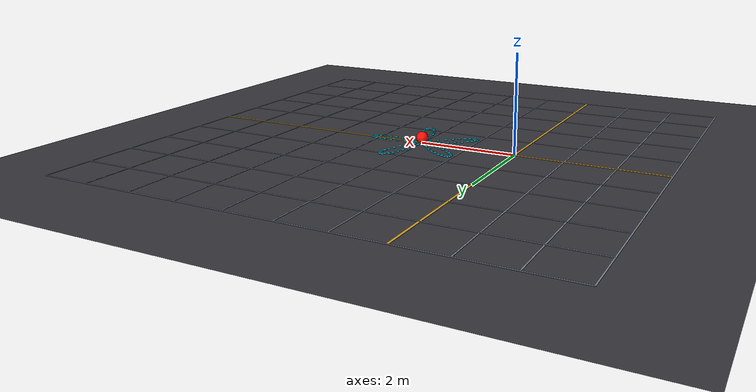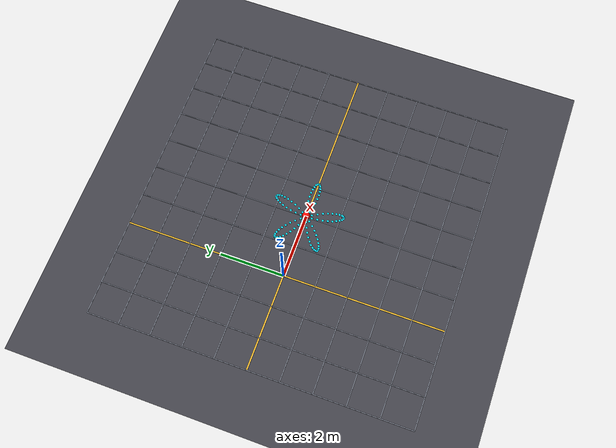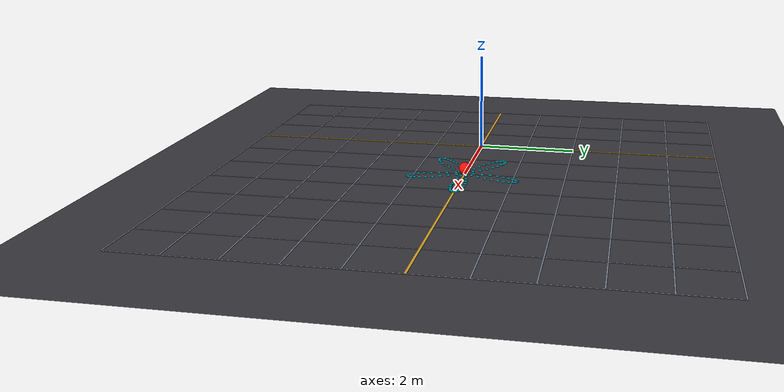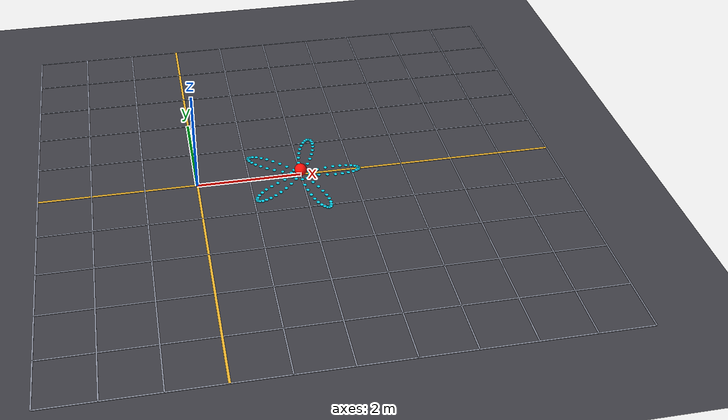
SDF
<?xml version="1.0"?>
<sdf version="1.9">
  <world name="ball_arena">
    <gravity>0 0 -9.81</gravity>
    <physics name="1ms" type="gz">
      <max_step_size>0.001</max_step_size>
      <real_time_factor>1</real_time_factor>
    </physics>
    <plugin
      filename="gz-sim-physics-system"
      name="gz::sim::systems::Physics"/>
    <plugin
      filename="gz-sim-user-commands-system"
      name="gz::sim::systems::UserCommands"/>
    <plugin
      filename="gz-sim-scene-broadcaster-system"
      name="gz::sim::systems::SceneBroadcaster"/>
    <plugin
      filename="gz-sim-sensors-system"
      name="gz::sim::systems::Sensors">
      <render_engine>ogre2</render_engine>
    </plugin>

    <light type="directional" name="sun">
      <pose>0 0 10 0 0 0</pose>
      <direction>-0.3 0.2 -1</direction>
    </light>

    <model name="ground">
      <static>true</static>
      <link name="link">
        <collision name="collision">
          <geometry>
            <plane>
              <normal>0 0 1</normal>
              <size>20 20</size>
            </plane>
          </geometry>
        </collision>
        <visual name="visual">
          <geometry>
            <plane>
              <normal>0 0 1</normal>
              <size>20 20</size>
            </plane>
          </geometry>
          <material>
            <diffuse>0.25 0.25 0.28 1</diffuse>
          </material>
        </visual>
      </link>
    </model>
    <!-- One-metre square guides make translation and rotation easy to judge. -->
    <model name="floor_grid">
      <static>true</static>
      <link name="grid_link">
        <visual name="grid_x_m3"><pose>-3 0 0.006 0 0 0</pose><geometry><box><size>0.025 10 0.008</size></box></geometry><material><ambient>0.58 0.60 0.66 1</ambient><diffuse>0.58 0.60 0.66 1</diffuse></material><cast_shadows>false</cast_shadows></visual>
        <visual name="grid_x_m2"><pose>-2 0 0.006 0 0 0</pose><geometry><box><size>0.025 10 0.008</size></box></geometry><material><ambient>0.58 0.60 0.66 1</ambient><diffuse>0.58 0.60 0.66 1</diffuse></material><cast_shadows>false</cast_shadows></visual>
        <visual name="grid_x_m1"><pose>-1 0 0.006 0 0 0</pose><geometry><box><size>0.025 10 0.008</size></box></geometry><material><ambient>0.58 0.60 0.66 1</ambient><diffuse>0.58 0.60 0.66 1</diffuse></material><cast_shadows>false</cast_shadows></visual>
        <visual name="grid_x_0"><pose>0 0 0.006 0 0 0</pose><geometry><box><size>0.045 10 0.008</size></box></geometry><material><ambient>0.95 0.72 0.18 1</ambient><diffuse>0.95 0.72 0.18 1</diffuse></material><cast_shadows>false</cast_shadows></visual>
        <visual name="grid_x_1"><pose>1 0 0.006 0 0 0</pose><geometry><box><size>0.025 10 0.008</size></box></geometry><material><ambient>0.58 0.60 0.66 1</ambient><diffuse>0.58 0.60 0.66 1</diffuse></material><cast_shadows>false</cast_shadows></visual>
        <visual name="grid_x_2"><pose>2 0 0.006 0 0 0</pose><geometry><box><size>0.025 10 0.008</size></box></geometry><material><ambient>0.58 0.60 0.66 1</ambient><diffuse>0.58 0.60 0.66 1</diffuse></material><cast_shadows>false</cast_shadows></visual>
        <visual name="grid_x_3"><pose>3 0 0.006 0 0 0</pose><geometry><box><size>0.025 10 0.008</size></box></geometry><material><ambient>0.58 0.60 0.66 1</ambient><diffuse>0.58 0.60 0.66 1</diffuse></material><cast_shadows>false</cast_shadows></visual>
        <visual name="grid_x_4"><pose>4 0 0.006 0 0 0</pose><geometry><box><size>0.025 10 0.008</size></box></geometry><material><ambient>0.58 0.60 0.66 1</ambient><diffuse>0.58 0.60 0.66 1</diffuse></material><cast_shadows>false</cast_shadows></visual>
        <visual name="grid_x_5"><pose>5 0 0.006 0 0 0</pose><geometry><box><size>0.025 10 0.008</size></box></geometry><material><ambient>0.58 0.60 0.66 1</ambient><diffuse>0.58 0.60 0.66 1</diffuse></material><cast_shadows>false</cast_shadows></visual>
        <visual name="grid_x_6"><pose>6 0 0.006 0 0 0</pose><geometry><box><size>0.025 10 0.008</size></box></geometry><material><ambient>0.58 0.60 0.66 1</ambient><diffuse>0.58 0.60 0.66 1</diffuse></material><cast_shadows>false</cast_shadows></visual>
        <visual name="grid_x_7"><pose>7 0 0.006 0 0 0</pose><geometry><box><size>0.025 10 0.008</size></box></geometry><material><ambient>0.58 0.60 0.66 1</ambient><diffuse>0.58 0.60 0.66 1</diffuse></material><cast_shadows>false</cast_shadows></visual>
        <visual name="grid_y_m5"><pose>2 -5 0.006 0 0 0</pose><geometry><box><size>10 0.025 0.008</size></box></geometry><material><ambient>0.58 0.60 0.66 1</ambient><diffuse>0.58 0.60 0.66 1</diffuse></material><cast_shadows>false</cast_shadows></visual>
        <visual name="grid_y_m4"><pose>2 -4 0.006 0 0 0</pose><geometry><box><size>10 0.025 0.008</size></box></geometry><material><ambient>0.58 0.60 0.66 1</ambient><diffuse>0.58 0.60 0.66 1</diffuse></material><cast_shadows>false</cast_shadows></visual>
        <visual name="grid_y_m3"><pose>2 -3 0.006 0 0 0</pose><geometry><box><size>10 0.025 0.008</size></box></geometry><material><ambient>0.58 0.60 0.66 1</ambient><diffuse>0.58 0.60 0.66 1</diffuse></material><cast_shadows>false</cast_shadows></visual>
        <visual name="grid_y_m2"><pose>2 -2 0.006 0 0 0</pose><geometry><box><size>10 0.025 0.008</size></box></geometry><material><ambient>0.58 0.60 0.66 1</ambient><diffuse>0.58 0.60 0.66 1</diffuse></material><cast_shadows>false</cast_shadows></visual>
        <visual name="grid_y_m1"><pose>2 -1 0.006 0 0 0</pose><geometry><box><size>10 0.025 0.008</size></box></geometry><material><ambient>0.58 0.60 0.66 1</ambient><diffuse>0.58 0.60 0.66 1</diffuse></material><cast_shadows>false</cast_shadows></visual>
        <visual name="grid_y_0"><pose>2 0 0.006 0 0 0</pose><geometry><box><size>10 0.045 0.008</size></box></geometry><material><ambient>0.95 0.72 0.18 1</ambient><diffuse>0.95 0.72 0.18 1</diffuse></material><cast_shadows>false</cast_shadows></visual>
        <visual name="grid_y_1"><pose>2 1 0.006 0 0 0</pose><geometry><box><size>10 0.025 0.008</size></box></geometry><material><ambient>0.58 0.60 0.66 1</ambient><diffuse>0.58 0.60 0.66 1</diffuse></material><cast_shadows>false</cast_shadows></visual>
        <visual name="grid_y_2"><pose>2 2 0.006 0 0 0</pose><geometry><box><size>10 0.025 0.008</size></box></geometry><material><ambient>0.58 0.60 0.66 1</ambient><diffuse>0.58 0.60 0.66 1</diffuse></material><cast_shadows>false</cast_shadows></visual>
        <visual name="grid_y_3"><pose>2 3 0.006 0 0 0</pose><geometry><box><size>10 0.025 0.008</size></box></geometry><material><ambient>0.58 0.60 0.66 1</ambient><diffuse>0.58 0.60 0.66 1</diffuse></material><cast_shadows>false</cast_shadows></visual>
        <visual name="grid_y_4"><pose>2 4 0.006 0 0 0</pose><geometry><box><size>10 0.025 0.008</size></box></geometry><material><ambient>0.58 0.60 0.66 1</ambient><diffuse>0.58 0.60 0.66 1</diffuse></material><cast_shadows>false</cast_shadows></visual>
        <visual name="grid_y_5"><pose>2 5 0.006 0 0 0</pose><geometry><box><size>10 0.025 0.008</size></box></geometry><material><ambient>0.58 0.60 0.66 1</ambient><diffuse>0.58 0.60 0.66 1</diffuse></material><cast_shadows>false</cast_shadows></visual>
      </link>
    </model>

    <!-- Dotted guide matching the default five-lobe trajectory. -->
    <model name="five_lobe_dotted_path">
      <static>true</static>
      <link name="path_link">
        <visual name="path_dot_000"><pose>3.1500 0.0000 0.014 0 0 0</pose><geometry><cylinder><radius>0.035</radius><length>0.012</length></cylinder></geometry><material><ambient>0.05 0.85 0.95 1</ambient><diffuse>0.05 0.85 0.95 1</diffuse><emissive>0.01 0.18 0.22 1</emissive></material><cast_shadows>false</cast_shadows></visual>
        <visual name="path_dot_001"><pose>3.1353 0.0357 0.014 0 0 0</pose><geometry><cylinder><radius>0.035</radius><length>0.012</length></cylinder></geometry><material><ambient>0.05 0.85 0.95 1</ambient><diffuse>0.05 0.85 0.95 1</diffuse><emissive>0.01 0.18 0.22 1</emissive></material><cast_shadows>false</cast_shadows></visual>
        <visual name="path_dot_002"><pose>3.0916 0.0687 0.014 0 0 0</pose><geometry><cylinder><radius>0.035</radius><length>0.012</length></cylinder></geometry><material><ambient>0.05 0.85 0.95 1</ambient><diffuse>0.05 0.85 0.95 1</diffuse><emissive>0.01 0.18 0.22 1</emissive></material><cast_shadows>false</cast_shadows></visual>
        <visual name="path_dot_003"><pose>3.0201 0.0964 0.014 0 0 0</pose><geometry><cylinder><radius>0.035</radius><length>0.012</length></cylinder></geometry><material><ambient>0.05 0.85 0.95 1</ambient><diffuse>0.05 0.85 0.95 1</diffuse><emissive>0.01 0.18 0.22 1</emissive></material><cast_shadows>false</cast_shadows></visual>
        <visual name="path_dot_004"><pose>2.9230 0.1166 0.014 0 0 0</pose><geometry><cylinder><radius>0.035</radius><length>0.012</length></cylinder></geometry><material><ambient>0.05 0.85 0.95 1</ambient><diffuse>0.05 0.85 0.95 1</diffuse><emissive>0.01 0.18 0.22 1</emissive></material><cast_shadows>false</cast_shadows></visual>
        <visual name="path_dot_005"><pose>2.8032 0.1272 0.014 0 0 0</pose><geometry><cylinder><radius>0.035</radius><length>0.012</length></cylinder></geometry><material><ambient>0.05 0.85 0.95 1</ambient><diffuse>0.05 0.85 0.95 1</diffuse><emissive>0.01 0.18 0.22 1</emissive></material><cast_shadows>false</cast_shadows></visual>
        <visual name="path_dot_006"><pose>2.6640 0.1267 0.014 0 0 0</pose><geometry><cylinder><radius>0.035</radius><length>0.012</length></cylinder></geometry><material><ambient>0.05 0.85 0.95 1</ambient><diffuse>0.05 0.85 0.95 1</diffuse><emissive>0.01 0.18 0.22 1</emissive></material><cast_shadows>false</cast_shadows></visual>
        <visual name="path_dot_007"><pose>2.5095 0.1139 0.014 0 0 0</pose><geometry><cylinder><radius>0.035</radius><length>0.012</length></cylinder></geometry><material><ambient>0.05 0.85 0.95 1</ambient><diffuse>0.05 0.85 0.95 1</diffuse><emissive>0.01 0.18 0.22 1</emissive></material><cast_shadows>false</cast_shadows></visual>
        <visual name="path_dot_008"><pose>2.3442 0.0884 0.014 0 0 0</pose><geometry><cylinder><radius>0.035</radius><length>0.012</length></cylinder></geometry><material><ambient>0.05 0.85 0.95 1</ambient><diffuse>0.05 0.85 0.95 1</diffuse><emissive>0.01 0.18 0.22 1</emissive></material><cast_shadows>false</cast_shadows></visual>
        <visual name="path_dot_009"><pose>2.1728 0.0502 0.014 0 0 0</pose><geometry><cylinder><radius>0.035</radius><length>0.012</length></cylinder></geometry><material><ambient>0.05 0.85 0.95 1</ambient><diffuse>0.05 0.85 0.95 1</diffuse><emissive>0.01 0.18 0.22 1</emissive></material><cast_shadows>false</cast_shadows></visual>
        <visual name="path_dot_010"><pose>2.0000 0.0000 0.014 0 0 0</pose><geometry><cylinder><radius>0.035</radius><length>0.012</length></cylinder></geometry><material><ambient>0.05 0.85 0.95 1</ambient><diffuse>0.05 0.85 0.95 1</diffuse><emissive>0.01 0.18 0.22 1</emissive></material><cast_shadows>false</cast_shadows></visual>
        <visual name="path_dot_011"><pose>1.8307 -0.0609 0.014 0 0 0</pose><geometry><cylinder><radius>0.035</radius><length>0.012</length></cylinder></geometry><material><ambient>0.05 0.85 0.95 1</ambient><diffuse>0.05 0.85 0.95 1</diffuse><emissive>0.01 0.18 0.22 1</emissive></material><cast_shadows>false</cast_shadows></visual>
        <visual name="path_dot_012"><pose>1.6696 -0.1308 0.014 0 0 0</pose><geometry><cylinder><radius>0.035</radius><length>0.012</length></cylinder></geometry><material><ambient>0.05 0.85 0.95 1</ambient><diffuse>0.05 0.85 0.95 1</diffuse><emissive>0.01 0.18 0.22 1</emissive></material><cast_shadows>false</cast_shadows></visual>
        <visual name="path_dot_013"><pose>1.5209 -0.2073 0.014 0 0 0</pose><geometry><cylinder><radius>0.035</radius><length>0.012</length></cylinder></geometry><material><ambient>0.05 0.85 0.95 1</ambient><diffuse>0.05 0.85 0.95 1</diffuse><emissive>0.01 0.18 0.22 1</emissive></material><cast_shadows>false</cast_shadows></visual>
        <visual name="path_dot_014"><pose>1.3884 -0.2878 0.014 0 0 0</pose><geometry><cylinder><radius>0.035</radius><length>0.012</length></cylinder></geometry><material><ambient>0.05 0.85 0.95 1</ambient><diffuse>0.05 0.85 0.95 1</diffuse><emissive>0.01 0.18 0.22 1</emissive></material><cast_shadows>false</cast_shadows></visual>
        <visual name="path_dot_015"><pose>1.2755 -0.3692 0.014 0 0 0</pose><geometry><cylinder><radius>0.035</radius><length>0.012</length></cylinder></geometry><material><ambient>0.05 0.85 0.95 1</ambient><diffuse>0.05 0.85 0.95 1</diffuse><emissive>0.01 0.18 0.22 1</emissive></material><cast_shadows>false</cast_shadows></visual>
        <visual name="path_dot_016"><pose>1.1847 -0.4482 0.014 0 0 0</pose><geometry><cylinder><radius>0.035</radius><length>0.012</length></cylinder></geometry><material><ambient>0.05 0.85 0.95 1</ambient><diffuse>0.05 0.85 0.95 1</diffuse><emissive>0.01 0.18 0.22 1</emissive></material><cast_shadows>false</cast_shadows></visual>
        <visual name="path_dot_017"><pose>1.1180 -0.5216 0.014 0 0 0</pose><geometry><cylinder><radius>0.035</radius><length>0.012</length></cylinder></geometry><material><ambient>0.05 0.85 0.95 1</ambient><diffuse>0.05 0.85 0.95 1</diffuse><emissive>0.01 0.18 0.22 1</emissive></material><cast_shadows>false</cast_shadows></visual>
        <visual name="path_dot_018"><pose>1.0765 -0.5860 0.014 0 0 0</pose><geometry><cylinder><radius>0.035</radius><length>0.012</length></cylinder></geometry><material><ambient>0.05 0.85 0.95 1</ambient><diffuse>0.05 0.85 0.95 1</diffuse><emissive>0.01 0.18 0.22 1</emissive></material><cast_shadows>false</cast_shadows></visual>
        <visual name="path_dot_019"><pose>1.0606 -0.6384 0.014 0 0 0</pose><geometry><cylinder><radius>0.035</radius><length>0.012</length></cylinder></geometry><material><ambient>0.05 0.85 0.95 1</ambient><diffuse>0.05 0.85 0.95 1</diffuse><emissive>0.01 0.18 0.22 1</emissive></material><cast_shadows>false</cast_shadows></visual>
        <visual name="path_dot_020"><pose>1.0696 -0.6760 0.014 0 0 0</pose><geometry><cylinder><radius>0.035</radius><length>0.012</length></cylinder></geometry><material><ambient>0.05 0.85 0.95 1</ambient><diffuse>0.05 0.85 0.95 1</diffuse><emissive>0.01 0.18 0.22 1</emissive></material><cast_shadows>false</cast_shadows></visual>
        <visual name="path_dot_021"><pose>1.1025 -0.6962 0.014 0 0 0</pose><geometry><cylinder><radius>0.035</radius><length>0.012</length></cylinder></geometry><material><ambient>0.05 0.85 0.95 1</ambient><diffuse>0.05 0.85 0.95 1</diffuse><emissive>0.01 0.18 0.22 1</emissive></material><cast_shadows>false</cast_shadows></visual>
        <visual name="path_dot_022"><pose>1.1573 -0.6972 0.014 0 0 0</pose><geometry><cylinder><radius>0.035</radius><length>0.012</length></cylinder></geometry><material><ambient>0.05 0.85 0.95 1</ambient><diffuse>0.05 0.85 0.95 1</diffuse><emissive>0.01 0.18 0.22 1</emissive></material><cast_shadows>false</cast_shadows></visual>
        <visual name="path_dot_023"><pose>1.2314 -0.6776 0.014 0 0 0</pose><geometry><cylinder><radius>0.035</radius><length>0.012</length></cylinder></geometry><material><ambient>0.05 0.85 0.95 1</ambient><diffuse>0.05 0.85 0.95 1</diffuse><emissive>0.01 0.18 0.22 1</emissive></material><cast_shadows>false</cast_shadows></visual>
        <visual name="path_dot_024"><pose>1.3218 -0.6369 0.014 0 0 0</pose><geometry><cylinder><radius>0.035</radius><length>0.012</length></cylinder></geometry><material><ambient>0.05 0.85 0.95 1</ambient><diffuse>0.05 0.85 0.95 1</diffuse><emissive>0.01 0.18 0.22 1</emissive></material><cast_shadows>false</cast_shadows></visual>
        <visual name="path_dot_025"><pose>1.4250 -0.5750 0.014 0 0 0</pose><geometry><cylinder><radius>0.035</radius><length>0.012</length></cylinder></geometry><material><ambient>0.05 0.85 0.95 1</ambient><diffuse>0.05 0.85 0.95 1</diffuse><emissive>0.01 0.18 0.22 1</emissive></material><cast_shadows>false</cast_shadows></visual>
        <visual name="path_dot_026"><pose>1.5373 -0.4927 0.014 0 0 0</pose><geometry><cylinder><radius>0.035</radius><length>0.012</length></cylinder></geometry><material><ambient>0.05 0.85 0.95 1</ambient><diffuse>0.05 0.85 0.95 1</diffuse><emissive>0.01 0.18 0.22 1</emissive></material><cast_shadows>false</cast_shadows></visual>
        <visual name="path_dot_027"><pose>1.6547 -0.3916 0.014 0 0 0</pose><geometry><cylinder><radius>0.035</radius><length>0.012</length></cylinder></geometry><material><ambient>0.05 0.85 0.95 1</ambient><diffuse>0.05 0.85 0.95 1</diffuse><emissive>0.01 0.18 0.22 1</emissive></material><cast_shadows>false</cast_shadows></visual>
        <visual name="path_dot_028"><pose>1.7735 -0.2738 0.014 0 0 0</pose><geometry><cylinder><radius>0.035</radius><length>0.012</length></cylinder></geometry><material><ambient>0.05 0.85 0.95 1</ambient><diffuse>0.05 0.85 0.95 1</diffuse><emissive>0.01 0.18 0.22 1</emissive></material><cast_shadows>false</cast_shadows></visual>
        <visual name="path_dot_029"><pose>1.8897 -0.1421 0.014 0 0 0</pose><geometry><cylinder><radius>0.035</radius><length>0.012</length></cylinder></geometry><material><ambient>0.05 0.85 0.95 1</ambient><diffuse>0.05 0.85 0.95 1</diffuse><emissive>0.01 0.18 0.22 1</emissive></material><cast_shadows>false</cast_shadows></visual>
        <visual name="path_dot_030"><pose>2.0000 -0.0000 0.014 0 0 0</pose><geometry><cylinder><radius>0.035</radius><length>0.012</length></cylinder></geometry><material><ambient>0.05 0.85 0.95 1</ambient><diffuse>0.05 0.85 0.95 1</diffuse><emissive>0.01 0.18 0.22 1</emissive></material><cast_shadows>false</cast_shadows></visual>
        <visual name="path_dot_031"><pose>2.1011 0.1488 0.014 0 0 0</pose><geometry><cylinder><radius>0.035</radius><length>0.012</length></cylinder></geometry><material><ambient>0.05 0.85 0.95 1</ambient><diffuse>0.05 0.85 0.95 1</diffuse><emissive>0.01 0.18 0.22 1</emissive></material><cast_shadows>false</cast_shadows></visual>
        <visual name="path_dot_032"><pose>2.1904 0.3000 0.014 0 0 0</pose><geometry><cylinder><radius>0.035</radius><length>0.012</length></cylinder></geometry><material><ambient>0.05 0.85 0.95 1</ambient><diffuse>0.05 0.85 0.95 1</diffuse><emissive>0.01 0.18 0.22 1</emissive></material><cast_shadows>false</cast_shadows></visual>
        <visual name="path_dot_033"><pose>2.2658 0.4494 0.014 0 0 0</pose><geometry><cylinder><radius>0.035</radius><length>0.012</length></cylinder></geometry><material><ambient>0.05 0.85 0.95 1</ambient><diffuse>0.05 0.85 0.95 1</diffuse><emissive>0.01 0.18 0.22 1</emissive></material><cast_shadows>false</cast_shadows></visual>
        <visual name="path_dot_034"><pose>2.3256 0.5923 0.014 0 0 0</pose><geometry><cylinder><radius>0.035</radius><length>0.012</length></cylinder></geometry><material><ambient>0.05 0.85 0.95 1</ambient><diffuse>0.05 0.85 0.95 1</diffuse><emissive>0.01 0.18 0.22 1</emissive></material><cast_shadows>false</cast_shadows></visual>
        <visual name="path_dot_035"><pose>2.3692 0.7245 0.014 0 0 0</pose><geometry><cylinder><radius>0.035</radius><length>0.012</length></cylinder></geometry><material><ambient>0.05 0.85 0.95 1</ambient><diffuse>0.05 0.85 0.95 1</diffuse><emissive>0.01 0.18 0.22 1</emissive></material><cast_shadows>false</cast_shadows></visual>
        <visual name="path_dot_036"><pose>2.3961 0.8418 0.014 0 0 0</pose><geometry><cylinder><radius>0.035</radius><length>0.012</length></cylinder></geometry><material><ambient>0.05 0.85 0.95 1</ambient><diffuse>0.05 0.85 0.95 1</diffuse><emissive>0.01 0.18 0.22 1</emissive></material><cast_shadows>false</cast_shadows></visual>
        <visual name="path_dot_037"><pose>2.4069 0.9404 0.014 0 0 0</pose><geometry><cylinder><radius>0.035</radius><length>0.012</length></cylinder></geometry><material><ambient>0.05 0.85 0.95 1</ambient><diffuse>0.05 0.85 0.95 1</diffuse><emissive>0.01 0.18 0.22 1</emissive></material><cast_shadows>false</cast_shadows></visual>
        <visual name="path_dot_038"><pose>2.4026 1.0169 0.014 0 0 0</pose><geometry><cylinder><radius>0.035</radius><length>0.012</length></cylinder></geometry><material><ambient>0.05 0.85 0.95 1</ambient><diffuse>0.05 0.85 0.95 1</diffuse><emissive>0.01 0.18 0.22 1</emissive></material><cast_shadows>false</cast_shadows></visual>
        <visual name="path_dot_039"><pose>2.3848 1.0687 0.014 0 0 0</pose><geometry><cylinder><radius>0.035</radius><length>0.012</length></cylinder></geometry><material><ambient>0.05 0.85 0.95 1</ambient><diffuse>0.05 0.85 0.95 1</diffuse><emissive>0.01 0.18 0.22 1</emissive></material><cast_shadows>false</cast_shadows></visual>
        <visual name="path_dot_040"><pose>2.3554 1.0937 0.014 0 0 0</pose><geometry><cylinder><radius>0.035</radius><length>0.012</length></cylinder></geometry><material><ambient>0.05 0.85 0.95 1</ambient><diffuse>0.05 0.85 0.95 1</diffuse><emissive>0.01 0.18 0.22 1</emissive></material><cast_shadows>false</cast_shadows></visual>
        <visual name="path_dot_041"><pose>2.3169 1.0907 0.014 0 0 0</pose><geometry><cylinder><radius>0.035</radius><length>0.012</length></cylinder></geometry><material><ambient>0.05 0.85 0.95 1</ambient><diffuse>0.05 0.85 0.95 1</diffuse><emissive>0.01 0.18 0.22 1</emissive></material><cast_shadows>false</cast_shadows></visual>
        <visual name="path_dot_042"><pose>2.2720 1.0594 0.014 0 0 0</pose><geometry><cylinder><radius>0.035</radius><length>0.012</length></cylinder></geometry><material><ambient>0.05 0.85 0.95 1</ambient><diffuse>0.05 0.85 0.95 1</diffuse><emissive>0.01 0.18 0.22 1</emissive></material><cast_shadows>false</cast_shadows></visual>
        <visual name="path_dot_043"><pose>2.2235 1.0000 0.014 0 0 0</pose><geometry><cylinder><radius>0.035</radius><length>0.012</length></cylinder></geometry><material><ambient>0.05 0.85 0.95 1</ambient><diffuse>0.05 0.85 0.95 1</diffuse><emissive>0.01 0.18 0.22 1</emissive></material><cast_shadows>false</cast_shadows></visual>
        <visual name="path_dot_044"><pose>2.1743 0.9139 0.014 0 0 0</pose><geometry><cylinder><radius>0.035</radius><length>0.012</length></cylinder></geometry><material><ambient>0.05 0.85 0.95 1</ambient><diffuse>0.05 0.85 0.95 1</diffuse><emissive>0.01 0.18 0.22 1</emissive></material><cast_shadows>false</cast_shadows></visual>
        <visual name="path_dot_045"><pose>2.1272 0.8032 0.014 0 0 0</pose><geometry><cylinder><radius>0.035</radius><length>0.012</length></cylinder></geometry><material><ambient>0.05 0.85 0.95 1</ambient><diffuse>0.05 0.85 0.95 1</diffuse><emissive>0.01 0.18 0.22 1</emissive></material><cast_shadows>false</cast_shadows></visual>
        <visual name="path_dot_046"><pose>2.0847 0.6706 0.014 0 0 0</pose><geometry><cylinder><radius>0.035</radius><length>0.012</length></cylinder></geometry><material><ambient>0.05 0.85 0.95 1</ambient><diffuse>0.05 0.85 0.95 1</diffuse><emissive>0.01 0.18 0.22 1</emissive></material><cast_shadows>false</cast_shadows></visual>
        <visual name="path_dot_047"><pose>2.0491 0.5198 0.014 0 0 0</pose><geometry><cylinder><radius>0.035</radius><length>0.012</length></cylinder></geometry><material><ambient>0.05 0.85 0.95 1</ambient><diffuse>0.05 0.85 0.95 1</diffuse><emissive>0.01 0.18 0.22 1</emissive></material><cast_shadows>false</cast_shadows></visual>
        <visual name="path_dot_048"><pose>2.0223 0.3547 0.014 0 0 0</pose><geometry><cylinder><radius>0.035</radius><length>0.012</length></cylinder></geometry><material><ambient>0.05 0.85 0.95 1</ambient><diffuse>0.05 0.85 0.95 1</diffuse><emissive>0.01 0.18 0.22 1</emissive></material><cast_shadows>false</cast_shadows></visual>
        <visual name="path_dot_049"><pose>2.0057 0.1798 0.014 0 0 0</pose><geometry><cylinder><radius>0.035</radius><length>0.012</length></cylinder></geometry><material><ambient>0.05 0.85 0.95 1</ambient><diffuse>0.05 0.85 0.95 1</diffuse><emissive>0.01 0.18 0.22 1</emissive></material><cast_shadows>false</cast_shadows></visual>
        <visual name="path_dot_050"><pose>2.0000 0.0000 0.014 0 0 0</pose><geometry><cylinder><radius>0.035</radius><length>0.012</length></cylinder></geometry><material><ambient>0.05 0.85 0.95 1</ambient><diffuse>0.05 0.85 0.95 1</diffuse><emissive>0.01 0.18 0.22 1</emissive></material><cast_shadows>false</cast_shadows></visual>
        <visual name="path_dot_051"><pose>2.0057 -0.1798 0.014 0 0 0</pose><geometry><cylinder><radius>0.035</radius><length>0.012</length></cylinder></geometry><material><ambient>0.05 0.85 0.95 1</ambient><diffuse>0.05 0.85 0.95 1</diffuse><emissive>0.01 0.18 0.22 1</emissive></material><cast_shadows>false</cast_shadows></visual>
        <visual name="path_dot_052"><pose>2.0223 -0.3547 0.014 0 0 0</pose><geometry><cylinder><radius>0.035</radius><length>0.012</length></cylinder></geometry><material><ambient>0.05 0.85 0.95 1</ambient><diffuse>0.05 0.85 0.95 1</diffuse><emissive>0.01 0.18 0.22 1</emissive></material><cast_shadows>false</cast_shadows></visual>
        <visual name="path_dot_053"><pose>2.0491 -0.5198 0.014 0 0 0</pose><geometry><cylinder><radius>0.035</radius><length>0.012</length></cylinder></geometry><material><ambient>0.05 0.85 0.95 1</ambient><diffuse>0.05 0.85 0.95 1</diffuse><emissive>0.01 0.18 0.22 1</emissive></material><cast_shadows>false</cast_shadows></visual>
        <visual name="path_dot_054"><pose>2.0847 -0.6706 0.014 0 0 0</pose><geometry><cylinder><radius>0.035</radius><length>0.012</length></cylinder></geometry><material><ambient>0.05 0.85 0.95 1</ambient><diffuse>0.05 0.85 0.95 1</diffuse><emissive>0.01 0.18 0.22 1</emissive></material><cast_shadows>false</cast_shadows></visual>
        <visual name="path_dot_055"><pose>2.1272 -0.8032 0.014 0 0 0</pose><geometry><cylinder><radius>0.035</radius><length>0.012</length></cylinder></geometry><material><ambient>0.05 0.85 0.95 1</ambient><diffuse>0.05 0.85 0.95 1</diffuse><emissive>0.01 0.18 0.22 1</emissive></material><cast_shadows>false</cast_shadows></visual>
        <visual name="path_dot_056"><pose>2.1743 -0.9139 0.014 0 0 0</pose><geometry><cylinder><radius>0.035</radius><length>0.012</length></cylinder></geometry><material><ambient>0.05 0.85 0.95 1</ambient><diffuse>0.05 0.85 0.95 1</diffuse><emissive>0.01 0.18 0.22 1</emissive></material><cast_shadows>false</cast_shadows></visual>
        <visual name="path_dot_057"><pose>2.2235 -1.0000 0.014 0 0 0</pose><geometry><cylinder><radius>0.035</radius><length>0.012</length></cylinder></geometry><material><ambient>0.05 0.85 0.95 1</ambient><diffuse>0.05 0.85 0.95 1</diffuse><emissive>0.01 0.18 0.22 1</emissive></material><cast_shadows>false</cast_shadows></visual>
        <visual name="path_dot_058"><pose>2.2720 -1.0594 0.014 0 0 0</pose><geometry><cylinder><radius>0.035</radius><length>0.012</length></cylinder></geometry><material><ambient>0.05 0.85 0.95 1</ambient><diffuse>0.05 0.85 0.95 1</diffuse><emissive>0.01 0.18 0.22 1</emissive></material><cast_shadows>false</cast_shadows></visual>
        <visual name="path_dot_059"><pose>2.3169 -1.0907 0.014 0 0 0</pose><geometry><cylinder><radius>0.035</radius><length>0.012</length></cylinder></geometry><material><ambient>0.05 0.85 0.95 1</ambient><diffuse>0.05 0.85 0.95 1</diffuse><emissive>0.01 0.18 0.22 1</emissive></material><cast_shadows>false</cast_shadows></visual>
        <visual name="path_dot_060"><pose>2.3554 -1.0937 0.014 0 0 0</pose><geometry><cylinder><radius>0.035</radius><length>0.012</length></cylinder></geometry><material><ambient>0.05 0.85 0.95 1</ambient><diffuse>0.05 0.85 0.95 1</diffuse><emissive>0.01 0.18 0.22 1</emissive></material><cast_shadows>false</cast_shadows></visual>
        <visual name="path_dot_061"><pose>2.3848 -1.0687 0.014 0 0 0</pose><geometry><cylinder><radius>0.035</radius><length>0.012</length></cylinder></geometry><material><ambient>0.05 0.85 0.95 1</ambient><diffuse>0.05 0.85 0.95 1</diffuse><emissive>0.01 0.18 0.22 1</emissive></material><cast_shadows>false</cast_shadows></visual>
        <visual name="path_dot_062"><pose>2.4026 -1.0169 0.014 0 0 0</pose><geometry><cylinder><radius>0.035</radius><length>0.012</length></cylinder></geometry><material><ambient>0.05 0.85 0.95 1</ambient><diffuse>0.05 0.85 0.95 1</diffuse><emissive>0.01 0.18 0.22 1</emissive></material><cast_shadows>false</cast_shadows></visual>
        <visual name="path_dot_063"><pose>2.4069 -0.9404 0.014 0 0 0</pose><geometry><cylinder><radius>0.035</radius><length>0.012</length></cylinder></geometry><material><ambient>0.05 0.85 0.95 1</ambient><diffuse>0.05 0.85 0.95 1</diffuse><emissive>0.01 0.18 0.22 1</emissive></material><cast_shadows>false</cast_shadows></visual>
        <visual name="path_dot_064"><pose>2.3961 -0.8418 0.014 0 0 0</pose><geometry><cylinder><radius>0.035</radius><length>0.012</length></cylinder></geometry><material><ambient>0.05 0.85 0.95 1</ambient><diffuse>0.05 0.85 0.95 1</diffuse><emissive>0.01 0.18 0.22 1</emissive></material><cast_shadows>false</cast_shadows></visual>
        <visual name="path_dot_065"><pose>2.3692 -0.7245 0.014 0 0 0</pose><geometry><cylinder><radius>0.035</radius><length>0.012</length></cylinder></geometry><material><ambient>0.05 0.85 0.95 1</ambient><diffuse>0.05 0.85 0.95 1</diffuse><emissive>0.01 0.18 0.22 1</emissive></material><cast_shadows>false</cast_shadows></visual>
        <visual name="path_dot_066"><pose>2.3256 -0.5923 0.014 0 0 0</pose><geometry><cylinder><radius>0.035</radius><length>0.012</length></cylinder></geometry><material><ambient>0.05 0.85 0.95 1</ambient><diffuse>0.05 0.85 0.95 1</diffuse><emissive>0.01 0.18 0.22 1</emissive></material><cast_shadows>false</cast_shadows></visual>
        <visual name="path_dot_067"><pose>2.2658 -0.4494 0.014 0 0 0</pose><geometry><cylinder><radius>0.035</radius><length>0.012</length></cylinder></geometry><material><ambient>0.05 0.85 0.95 1</ambient><diffuse>0.05 0.85 0.95 1</diffuse><emissive>0.01 0.18 0.22 1</emissive></material><cast_shadows>false</cast_shadows></visual>
        <visual name="path_dot_068"><pose>2.1904 -0.3000 0.014 0 0 0</pose><geometry><cylinder><radius>0.035</radius><length>0.012</length></cylinder></geometry><material><ambient>0.05 0.85 0.95 1</ambient><diffuse>0.05 0.85 0.95 1</diffuse><emissive>0.01 0.18 0.22 1</emissive></material><cast_shadows>false</cast_shadows></visual>
        <visual name="path_dot_069"><pose>2.1011 -0.1488 0.014 0 0 0</pose><geometry><cylinder><radius>0.035</radius><length>0.012</length></cylinder></geometry><material><ambient>0.05 0.85 0.95 1</ambient><diffuse>0.05 0.85 0.95 1</diffuse><emissive>0.01 0.18 0.22 1</emissive></material><cast_shadows>false</cast_shadows></visual>
        <visual name="path_dot_070"><pose>2.0000 -0.0000 0.014 0 0 0</pose><geometry><cylinder><radius>0.035</radius><length>0.012</length></cylinder></geometry><material><ambient>0.05 0.85 0.95 1</ambient><diffuse>0.05 0.85 0.95 1</diffuse><emissive>0.01 0.18 0.22 1</emissive></material><cast_shadows>false</cast_shadows></visual>
        <visual name="path_dot_071"><pose>1.8897 0.1421 0.014 0 0 0</pose><geometry><cylinder><radius>0.035</radius><length>0.012</length></cylinder></geometry><material><ambient>0.05 0.85 0.95 1</ambient><diffuse>0.05 0.85 0.95 1</diffuse><emissive>0.01 0.18 0.22 1</emissive></material><cast_shadows>false</cast_shadows></visual>
        <visual name="path_dot_072"><pose>1.7735 0.2738 0.014 0 0 0</pose><geometry><cylinder><radius>0.035</radius><length>0.012</length></cylinder></geometry><material><ambient>0.05 0.85 0.95 1</ambient><diffuse>0.05 0.85 0.95 1</diffuse><emissive>0.01 0.18 0.22 1</emissive></material><cast_shadows>false</cast_shadows></visual>
        <visual name="path_dot_073"><pose>1.6547 0.3916 0.014 0 0 0</pose><geometry><cylinder><radius>0.035</radius><length>0.012</length></cylinder></geometry><material><ambient>0.05 0.85 0.95 1</ambient><diffuse>0.05 0.85 0.95 1</diffuse><emissive>0.01 0.18 0.22 1</emissive></material><cast_shadows>false</cast_shadows></visual>
        <visual name="path_dot_074"><pose>1.5373 0.4927 0.014 0 0 0</pose><geometry><cylinder><radius>0.035</radius><length>0.012</length></cylinder></geometry><material><ambient>0.05 0.85 0.95 1</ambient><diffuse>0.05 0.85 0.95 1</diffuse><emissive>0.01 0.18 0.22 1</emissive></material><cast_shadows>false</cast_shadows></visual>
        <visual name="path_dot_075"><pose>1.4250 0.5750 0.014 0 0 0</pose><geometry><cylinder><radius>0.035</radius><length>0.012</length></cylinder></geometry><material><ambient>0.05 0.85 0.95 1</ambient><diffuse>0.05 0.85 0.95 1</diffuse><emissive>0.01 0.18 0.22 1</emissive></material><cast_shadows>false</cast_shadows></visual>
        <visual name="path_dot_076"><pose>1.3218 0.6369 0.014 0 0 0</pose><geometry><cylinder><radius>0.035</radius><length>0.012</length></cylinder></geometry><material><ambient>0.05 0.85 0.95 1</ambient><diffuse>0.05 0.85 0.95 1</diffuse><emissive>0.01 0.18 0.22 1</emissive></material><cast_shadows>false</cast_shadows></visual>
        <visual name="path_dot_077"><pose>1.2314 0.6776 0.014 0 0 0</pose><geometry><cylinder><radius>0.035</radius><length>0.012</length></cylinder></geometry><material><ambient>0.05 0.85 0.95 1</ambient><diffuse>0.05 0.85 0.95 1</diffuse><emissive>0.01 0.18 0.22 1</emissive></material><cast_shadows>false</cast_shadows></visual>
        <visual name="path_dot_078"><pose>1.1573 0.6972 0.014 0 0 0</pose><geometry><cylinder><radius>0.035</radius><length>0.012</length></cylinder></geometry><material><ambient>0.05 0.85 0.95 1</ambient><diffuse>0.05 0.85 0.95 1</diffuse><emissive>0.01 0.18 0.22 1</emissive></material><cast_shadows>false</cast_shadows></visual>
        <visual name="path_dot_079"><pose>1.1025 0.6962 0.014 0 0 0</pose><geometry><cylinder><radius>0.035</radius><length>0.012</length></cylinder></geometry><material><ambient>0.05 0.85 0.95 1</ambient><diffuse>0.05 0.85 0.95 1</diffuse><emissive>0.01 0.18 0.22 1</emissive></material><cast_shadows>false</cast_shadows></visual>
        <visual name="path_dot_080"><pose>1.0696 0.6760 0.014 0 0 0</pose><geometry><cylinder><radius>0.035</radius><length>0.012</length></cylinder></geometry><material><ambient>0.05 0.85 0.95 1</ambient><diffuse>0.05 0.85 0.95 1</diffuse><emissive>0.01 0.18 0.22 1</emissive></material><cast_shadows>false</cast_shadows></visual>
        <visual name="path_dot_081"><pose>1.0606 0.6384 0.014 0 0 0</pose><geometry><cylinder><radius>0.035</radius><length>0.012</length></cylinder></geometry><material><ambient>0.05 0.85 0.95 1</ambient><diffuse>0.05 0.85 0.95 1</diffuse><emissive>0.01 0.18 0.22 1</emissive></material><cast_shadows>false</cast_shadows></visual>
        <visual name="path_dot_082"><pose>1.0765 0.5860 0.014 0 0 0</pose><geometry><cylinder><radius>0.035</radius><length>0.012</length></cylinder></geometry><material><ambient>0.05 0.85 0.95 1</ambient><diffuse>0.05 0.85 0.95 1</diffuse><emissive>0.01 0.18 0.22 1</emissive></material><cast_shadows>false</cast_shadows></visual>
        <visual name="path_dot_083"><pose>1.1180 0.5216 0.014 0 0 0</pose><geometry><cylinder><radius>0.035</radius><length>0.012</length></cylinder></geometry><material><ambient>0.05 0.85 0.95 1</ambient><diffuse>0.05 0.85 0.95 1</diffuse><emissive>0.01 0.18 0.22 1</emissive></material><cast_shadows>false</cast_shadows></visual>
        <visual name="path_dot_084"><pose>1.1847 0.4482 0.014 0 0 0</pose><geometry><cylinder><radius>0.035</radius><length>0.012</length></cylinder></geometry><material><ambient>0.05 0.85 0.95 1</ambient><diffuse>0.05 0.85 0.95 1</diffuse><emissive>0.01 0.18 0.22 1</emissive></material><cast_shadows>false</cast_shadows></visual>
        <visual name="path_dot_085"><pose>1.2755 0.3692 0.014 0 0 0</pose><geometry><cylinder><radius>0.035</radius><length>0.012</length></cylinder></geometry><material><ambient>0.05 0.85 0.95 1</ambient><diffuse>0.05 0.85 0.95 1</diffuse><emissive>0.01 0.18 0.22 1</emissive></material><cast_shadows>false</cast_shadows></visual>
        <visual name="path_dot_086"><pose>1.3884 0.2878 0.014 0 0 0</pose><geometry><cylinder><radius>0.035</radius><length>0.012</length></cylinder></geometry><material><ambient>0.05 0.85 0.95 1</ambient><diffuse>0.05 0.85 0.95 1</diffuse><emissive>0.01 0.18 0.22 1</emissive></material><cast_shadows>false</cast_shadows></visual>
        <visual name="path_dot_087"><pose>1.5209 0.2073 0.014 0 0 0</pose><geometry><cylinder><radius>0.035</radius><length>0.012</length></cylinder></geometry><material><ambient>0.05 0.85 0.95 1</ambient><diffuse>0.05 0.85 0.95 1</diffuse><emissive>0.01 0.18 0.22 1</emissive></material><cast_shadows>false</cast_shadows></visual>
        <visual name="path_dot_088"><pose>1.6696 0.1308 0.014 0 0 0</pose><geometry><cylinder><radius>0.035</radius><length>0.012</length></cylinder></geometry><material><ambient>0.05 0.85 0.95 1</ambient><diffuse>0.05 0.85 0.95 1</diffuse><emissive>0.01 0.18 0.22 1</emissive></material><cast_shadows>false</cast_shadows></visual>
        <visual name="path_dot_089"><pose>1.8307 0.0609 0.014 0 0 0</pose><geometry><cylinder><radius>0.035</radius><length>0.012</length></cylinder></geometry><material><ambient>0.05 0.85 0.95 1</ambient><diffuse>0.05 0.85 0.95 1</diffuse><emissive>0.01 0.18 0.22 1</emissive></material><cast_shadows>false</cast_shadows></visual>
        <visual name="path_dot_090"><pose>2.0000 0.0000 0.014 0 0 0</pose><geometry><cylinder><radius>0.035</radius><length>0.012</length></cylinder></geometry><material><ambient>0.05 0.85 0.95 1</ambient><diffuse>0.05 0.85 0.95 1</diffuse><emissive>0.01 0.18 0.22 1</emissive></material><cast_shadows>false</cast_shadows></visual>
        <visual name="path_dot_091"><pose>2.1728 -0.0502 0.014 0 0 0</pose><geometry><cylinder><radius>0.035</radius><length>0.012</length></cylinder></geometry><material><ambient>0.05 0.85 0.95 1</ambient><diffuse>0.05 0.85 0.95 1</diffuse><emissive>0.01 0.18 0.22 1</emissive></material><cast_shadows>false</cast_shadows></visual>
        <visual name="path_dot_092"><pose>2.3442 -0.0884 0.014 0 0 0</pose><geometry><cylinder><radius>0.035</radius><length>0.012</length></cylinder></geometry><material><ambient>0.05 0.85 0.95 1</ambient><diffuse>0.05 0.85 0.95 1</diffuse><emissive>0.01 0.18 0.22 1</emissive></material><cast_shadows>false</cast_shadows></visual>
        <visual name="path_dot_093"><pose>2.5095 -0.1139 0.014 0 0 0</pose><geometry><cylinder><radius>0.035</radius><length>0.012</length></cylinder></geometry><material><ambient>0.05 0.85 0.95 1</ambient><diffuse>0.05 0.85 0.95 1</diffuse><emissive>0.01 0.18 0.22 1</emissive></material><cast_shadows>false</cast_shadows></visual>
        <visual name="path_dot_094"><pose>2.6640 -0.1267 0.014 0 0 0</pose><geometry><cylinder><radius>0.035</radius><length>0.012</length></cylinder></geometry><material><ambient>0.05 0.85 0.95 1</ambient><diffuse>0.05 0.85 0.95 1</diffuse><emissive>0.01 0.18 0.22 1</emissive></material><cast_shadows>false</cast_shadows></visual>
        <visual name="path_dot_095"><pose>2.8032 -0.1272 0.014 0 0 0</pose><geometry><cylinder><radius>0.035</radius><length>0.012</length></cylinder></geometry><material><ambient>0.05 0.85 0.95 1</ambient><diffuse>0.05 0.85 0.95 1</diffuse><emissive>0.01 0.18 0.22 1</emissive></material><cast_shadows>false</cast_shadows></visual>
        <visual name="path_dot_096"><pose>2.9230 -0.1166 0.014 0 0 0</pose><geometry><cylinder><radius>0.035</radius><length>0.012</length></cylinder></geometry><material><ambient>0.05 0.85 0.95 1</ambient><diffuse>0.05 0.85 0.95 1</diffuse><emissive>0.01 0.18 0.22 1</emissive></material><cast_shadows>false</cast_shadows></visual>
        <visual name="path_dot_097"><pose>3.0201 -0.0964 0.014 0 0 0</pose><geometry><cylinder><radius>0.035</radius><length>0.012</length></cylinder></geometry><material><ambient>0.05 0.85 0.95 1</ambient><diffuse>0.05 0.85 0.95 1</diffuse><emissive>0.01 0.18 0.22 1</emissive></material><cast_shadows>false</cast_shadows></visual>
        <visual name="path_dot_098"><pose>3.0916 -0.0687 0.014 0 0 0</pose><geometry><cylinder><radius>0.035</radius><length>0.012</length></cylinder></geometry><material><ambient>0.05 0.85 0.95 1</ambient><diffuse>0.05 0.85 0.95 1</diffuse><emissive>0.01 0.18 0.22 1</emissive></material><cast_shadows>false</cast_shadows></visual>
        <visual name="path_dot_099"><pose>3.1353 -0.0357 0.014 0 0 0</pose><geometry><cylinder><radius>0.035</radius><length>0.012</length></cylinder></geometry><material><ambient>0.05 0.85 0.95 1</ambient><diffuse>0.05 0.85 0.95 1</diffuse><emissive>0.01 0.18 0.22 1</emissive></material><cast_shadows>false</cast_shadows></visual>
      </link>
    </model>

    <!-- Static avoids unneeded ball dynamics; set_pose defines the lesson path. -->
    <model name="target_ball">
      <static>true</static>
      <pose>2 0 0.12 0 0 0</pose>
      <link name="link">
        <visual name="visual">
          <geometry>
            <sphere>
              <radius>0.12</radius>
            </sphere>
          </geometry>
          <material>
            <diffuse>1 0.05 0.02 1</diffuse>
          </material>
        </visual>
      </link>
    </model>
  </world>
</sdf>
